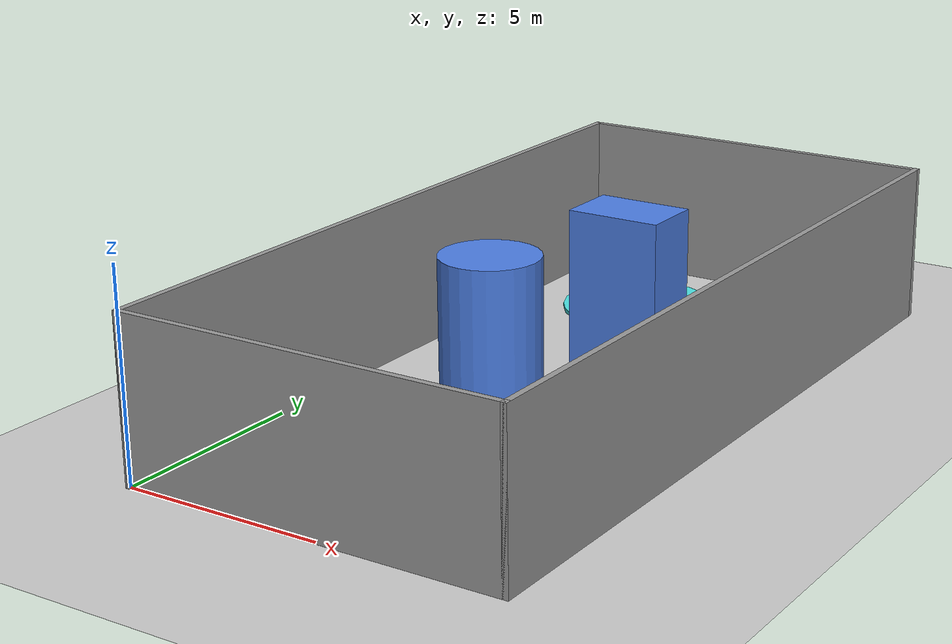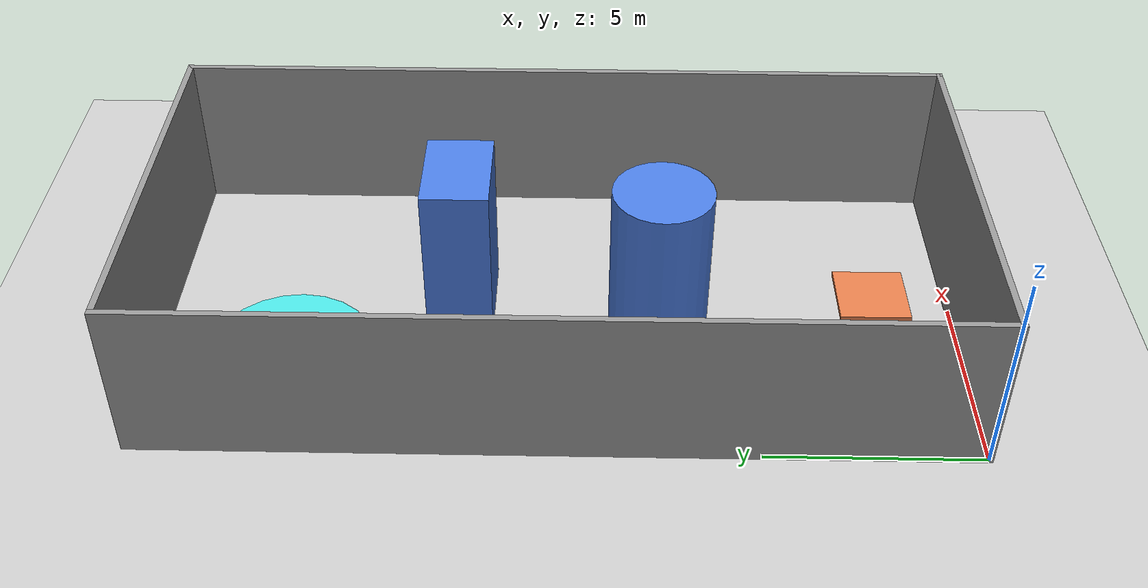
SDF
<sdf version="1.7">
 <world name="default">
  <light name="sun" type="directional">
   <pose>0 0 10 0 -0 0</pose>
   <diffuse>0.8 0.8 0.8 1</diffuse>
   <specular>0.2 0.2 0.2 1</specular>
   <attenuation>
    <range>1000</range>
    <constant>0.9</constant>
    <linear>0.01</linear>
    <quadratic>0.001</quadratic>
   </attenuation>
   <direction>-0.5 0.1 -0.9</direction>
   <spot><inner_angle>0</inner_angle><outer_angle>0</outer_angle><falloff>0</falloff></spot>
  </light>
  <model name="ground_plane">
   <static>1</static>
   <link name="link">
    <collision name="collision">
     <geometry><plane><normal>0 0 1</normal><size>100 100</size></plane></geometry>
     <surface>
      <contact><collide_bitmask>65535</collide_bitmask></contact>
      <friction><ode><mu>100</mu><mu2>50</mu2></ode></friction>
     </surface>
    </collision>
    <visual name="visual">
     <cast_shadows>0</cast_shadows>
     <geometry><plane><normal>0 0 1</normal><size>100 100</size></plane></geometry>
     <material>
      <script><uri>file://media/materials/scripts/gazebo.material</uri><name>Gazebo/Grey</name></script>
     </material>
    </visual>
   </link>
  </model>
  <gravity>0 0 -9.8</gravity>
  <magnetic_field>6e-06 2.3e-05 -4.2e-05</magnetic_field>
  <atmosphere type="adiabatic"/>
  <physics type="ode">
   <max_step_size>0.001</max_step_size>
   <real_time_factor>1</real_time_factor>
   <real_time_update_rate>1000</real_time_update_rate>
  </physics>
  <scene><ambient>0.4 0.4 0.4 1</ambient><background>0.7 0.7 0.7 1</background><shadows>1</shadows></scene>
  <spherical_coordinates>
   <surface_model>EARTH_WGS84</surface_model>
   <latitude_deg>0</latitude_deg>
   <longitude_deg>0</longitude_deg>
   <elevation>0</elevation>
   <heading_deg>0</heading_deg>
  </spherical_coordinates>
  <model name="smallArea">
   <pose>4.8 9.6 0 0 -0 0</pose>
   <link name="Wall_2">
    <collision name="Wall_2_Collision">
     <geometry><box><size>19.35 0.15 4</size></box></geometry>
     <pose>0 0 2 0 -0 0</pose>
    </collision>
    <visual name="Wall_2_Visual">
     <pose>0 0 2 0 -0 0</pose>
     <geometry><box><size>19.35 0.15 4</size></box></geometry>
     <material>
      <script><uri>file://media/materials/scripts/gazebo.material</uri><name>Gazebo/Grey</name></script>
      <ambient>1 1 1 1</ambient>
     </material>
     <meta><layer>0</layer></meta>
    </visual>
    <pose>-4.8 0 0 0 -0 1.5708</pose>
   </link>
   <link name="Wall_5">
    <collision name="Wall_5_Collision">
     <geometry><box><size>9.75 0.15 4</size></box></geometry>
     <pose>0 0 2 0 -0 0</pose>
    </collision>
    <visual name="Wall_5_Visual">
     <pose>0 0 2 0 -0 0</pose>
     <geometry><box><size>9.75 0.15 4</size></box></geometry>
     <material>
      <script><uri>file://media/materials/scripts/gazebo.material</uri><name>Gazebo/Grey</name></script>
      <ambient>1 1 1 1</ambient>
     </material>
     <meta><layer>0</layer></meta>
    </visual>
    <pose>0 -9.6 0 0 -0 0</pose>
   </link>
   <link name="Wall_7">
    <collision name="Wall_7_Collision">
     <geometry><box><size>19.35 0.15 4</size></box></geometry>
     <pose>0 0 2 0 -0 0</pose>
    </collision>
    <visual name="Wall_7_Visual">
     <pose>0 0 2 0 -0 0</pose>
     <geometry><box><size>19.35 0.15 4</size></box></geometry>
     <material>
      <script><uri>file://media/materials/scripts/gazebo.material</uri><name>Gazebo/Grey</name></script>
      <ambient>1 1 1 1</ambient>
     </material>
     <meta><layer>0</layer></meta>
    </visual>
    <pose>4.8 0 0 0 -0 1.5708</pose>
   </link>
   <link name="Wall_9">
    <collision name="Wall_9_Collision">
     <geometry><box><size>9.75 0.15 4</size></box></geometry>
     <pose>0 0 2 0 -0 0</pose>
    </collision>
    <visual name="Wall_9_Visual">
     <pose>0 0 2 0 -0 0</pose>
     <geometry><box><size>9.75 0.15 4</size></box></geometry>
     <material>
      <script><uri>file://media/materials/scripts/gazebo.material</uri><name>Gazebo/Grey</name></script>
      <ambient>1 1 1 1</ambient>
     </material>
     <meta><layer>0</layer></meta>
    </visual>
    <pose>0 9.6 0 0 -0 0</pose>
   </link>
   <static>1</static>
  </model>
  <model name="target">
   <link name="link_0">
    <inertial>
     <mass>1</mass>
     <inertia><ixx>0.145833</ixx><ixy>0</ixy><ixz>0</ixz><iyy>0.145833</iyy><iyz>0</iyz><izz>0.125</izz></inertia>
    </inertial>
    <visual name="visual">
     <geometry><cylinder><radius>2</radius><length>0.1</length></cylinder></geometry>
     <material>
      <lighting>1</lighting>
      <script><uri>file://media/materials/scripts/gazebo.material</uri><name>Gazebo/Grey</name></script>
      <shader type="pixel"><normal_map>__default__</normal_map></shader>
      <ambient>0.3 0.9 0.9 1</ambient>
      <diffuse>0.3 0.9 0.9 1</diffuse>
      <specular>0.01 0.01 0.01 1</specular>
      <emissive>0 0 0 1</emissive>
     </material>
    </visual>
    <collision name="collision">
     <geometry><cylinder><radius>2</radius><length>0.1</length></cylinder></geometry>
     <surface>
      <friction>
       <ode><mu>1</mu><mu2>1</mu2><fdir1>0 0 0</fdir1><slip1>0</slip1><slip2>0</slip2></ode>
       <torsional>
        <coefficient>1</coefficient>
        <patch_radius>0</patch_radius>
        <surface_radius>0</surface_radius>
        <use_patch_radius>1</use_patch_radius>
        <ode><slip>0</slip></ode>
       </torsional>
      </friction>
      <bounce><restitution_coefficient>0</restitution_coefficient><threshold>1e+06</threshold></bounce>
      <contact>
       <collide_without_contact>0</collide_without_contact>
       <collide_without_contact_bitmask>1</collide_without_contact_bitmask>
       <collide_bitmask>1</collide_bitmask>
       <ode>
        <soft_cfm>0</soft_cfm>
        <soft_erp>0.2</soft_erp>
        <kp>1e+13</kp>
        <kd>1</kd>
        <max_vel>0.01</max_vel>
        <min_depth>0</min_depth>
       </ode>
       <bullet>
        <split_impulse>1</split_impulse>
        <split_impulse_penetration_threshold>-0.01</split_impulse_penetration_threshold>
        <soft_cfm>0</soft_cfm>
        <soft_erp>0.2</soft_erp>
        <kp>1e+13</kp>
        <kd>1</kd>
       </bullet>
      </contact>
     </surface>
    </collision>
   </link>
   <static>1</static>
   <pose>3.2 16 0.05 0 -0 0</pose>
  </model>
  <model name="cuboid">
   <link name="link_8">
    <inertial>
     <mass>1</mass>
     <inertia>
      <ixx>0.166667</ixx>
      <ixy>0</ixy>
      <ixz>0</ixz>
      <iyy>0.166667</iyy>
      <iyz>0</iyz>
      <izz>0.166667</izz>
     </inertia>
    </inertial>
    <visual name="visual">
     <geometry><box><size>2.4 1.6 4</size></box></geometry>
     <material>
      <lighting>1</lighting>
      <script><uri>file://media/materials/scripts/gazebo.material</uri><name>Gazebo/Grey</name></script>
      <shader type="pixel"><normal_map>__default__</normal_map></shader>
      <ambient>0.3 0.5 0.9 1</ambient>
      <diffuse>0.3 0.5 0.9 1</diffuse>
      <specular>0.01 0.01 0.01 1</specular>
      <emissive>0 0 0 1</emissive>
     </material>
    </visual>
    <collision name="collision">
     <geometry><box><size>3.2 1.6 4</size></box></geometry>
     <surface>
      <friction>
       <ode><mu>1</mu><mu2>1</mu2><fdir1>0 0 0</fdir1><slip1>0</slip1><slip2>0</slip2></ode>
       <torsional>
        <coefficient>1</coefficient>
        <patch_radius>0</patch_radius>
        <surface_radius>0</surface_radius>
        <use_patch_radius>1</use_patch_radius>
        <ode><slip>0</slip></ode>
       </torsional>
      </friction>
      <bounce><restitution_coefficient>0</restitution_coefficient><threshold>1e+06</threshold></bounce>
      <contact>
       <collide_without_contact>0</collide_without_contact>
       <collide_without_contact_bitmask>1</collide_without_contact_bitmask>
       <collide_bitmask>1</collide_bitmask>
       <ode>
        <soft_cfm>0</soft_cfm>
        <soft_erp>0.2</soft_erp>
        <kp>1e+13</kp>
        <kd>1</kd>
        <max_vel>0.01</max_vel>
        <min_depth>0</min_depth>
       </ode>
       <bullet>
        <split_impulse>1</split_impulse>
        <split_impulse_penetration_threshold>-0.01</split_impulse_penetration_threshold>
        <soft_cfm>0</soft_cfm>
        <soft_erp>0.2</soft_erp>
        <kp>1e+13</kp>
        <kd>1</kd>
       </bullet>
      </contact>
     </surface>
    </collision>
   </link>
   <static>1</static>
   <pose>5.2 12 2.0 0 0 0</pose>
  </model>
  <model name="cylinder">
   <link name="link_0">
    <inertial>
     <mass>1</mass>
     <inertia><ixx>0.145833</ixx><ixy>0</ixy><ixz>0</ixz><iyy>0.145833</iyy><iyz>0</iyz><izz>0.125</izz></inertia>
    </inertial>
    <visual name="visual">
     <geometry><cylinder><radius>1.2</radius><length>4</length></cylinder></geometry>
     <material>
      <lighting>1</lighting>
      <script><uri>file://media/materials/scripts/gazebo.material</uri><name>Gazebo/Grey</name></script>
      <shader type="pixel"><normal_map>__default__</normal_map></shader>
      <ambient>0.3 0.5 0.9 1</ambient>
      <diffuse>0.3 0.5 0.9 1</diffuse>
      <specular>0.01 0.01 0.01 1</specular>
      <emissive>0 0 0 1</emissive>
     </material>
    </visual>
    <collision name="collision">
     <geometry><cylinder><radius>1.2</radius><length>4</length></cylinder></geometry>
     <surface>
      <friction>
       <ode><mu>1</mu><mu2>1</mu2><fdir1>0 0 0</fdir1><slip1>0</slip1><slip2>0</slip2></ode>
       <torsional>
        <coefficient>1</coefficient>
        <patch_radius>0</patch_radius>
        <surface_radius>0</surface_radius>
        <use_patch_radius>1</use_patch_radius>
        <ode><slip>0</slip></ode>
       </torsional>
      </friction>
      <bounce><restitution_coefficient>0</restitution_coefficient><threshold>1e+06</threshold></bounce>
      <contact>
       <collide_without_contact>0</collide_without_contact>
       <collide_without_contact_bitmask>1</collide_without_contact_bitmask>
       <collide_bitmask>1</collide_bitmask>
       <ode>
        <soft_cfm>0</soft_cfm>
        <soft_erp>0.2</soft_erp>
        <kp>1e+13</kp>
        <kd>1</kd>
        <max_vel>0.01</max_vel>
        <min_depth>0</min_depth>
       </ode>
       <bullet>
        <split_impulse>1</split_impulse>
        <split_impulse_penetration_threshold>-0.01</split_impulse_penetration_threshold>
        <soft_cfm>0</soft_cfm>
        <soft_erp>0.2</soft_erp>
        <kp>1e+13</kp>
        <kd>1</kd>
       </bullet>
      </contact>
     </surface>
    </collision>
   </link>
   <static>1</static>
   <pose>4.4 7.2 2.0 0 0 0</pose>
  </model>
  <model name="A_0">
   <link name="link_8">
    <inertial>
     <mass>1</mass>
     <inertia>
      <ixx>0.166667</ixx>
      <ixy>0</ixy>
      <ixz>0</ixz>
      <iyy>0.166667</iyy>
      <iyz>0</iyz>
      <izz>0.166667</izz>
     </inertia>
    </inertial>
    <visual name="visual">
     <geometry><box><size>1.6 1.6 0.1</size></box></geometry>
     <material>
      <lighting>1</lighting>
      <script><uri>file://media/materials/scripts/gazebo.material</uri><name>Gazebo/Grey</name></script>
      <shader type="pixel"><normal_map>__default__</normal_map></shader>
      <ambient>0.9 0.5 0.3 1</ambient>
      <diffuse>0.9 0.5 0.3 1</diffuse>
      <specular>0.01 0.01 0.01 1</specular>
      <emissive>0 0 0 1</emissive>
     </material>
    </visual>
    <collision name="collision">
     <geometry><box><size>1.6 1.6 0.1</size></box></geometry>
     <surface>
      <friction>
       <ode><mu>1</mu><mu2>1</mu2><fdir1>0 0 0</fdir1><slip1>0</slip1><slip2>0</slip2></ode>
       <torsional>
        <coefficient>1</coefficient>
        <patch_radius>0</patch_radius>
        <surface_radius>0</surface_radius>
        <use_patch_radius>1</use_patch_radius>
        <ode><slip>0</slip></ode>
       </torsional>
      </friction>
      <bounce><restitution_coefficient>0</restitution_coefficient><threshold>1e+06</threshold></bounce>
      <contact>
       <collide_without_contact>0</collide_without_contact>
       <collide_without_contact_bitmask>1</collide_without_contact_bitmask>
       <collide_bitmask>1</collide_bitmask>
       <ode>
        <soft_cfm>0</soft_cfm>
        <soft_erp>0.2</soft_erp>
        <kp>1e+13</kp>
        <kd>1</kd>
        <max_vel>0.01</max_vel>
        <min_depth>0</min_depth>
       </ode>
       <bullet>
        <split_impulse>1</split_impulse>
        <split_impulse_penetration_threshold>-0.01</split_impulse_penetration_threshold>
        <soft_cfm>0</soft_cfm>
        <soft_erp>0.2</soft_erp>
        <kp>1e+13</kp>
        <kd>1</kd>
       </bullet>
      </contact>
     </surface>
    </collision>
   </link>
   <static>1</static>
   <pose>3.2 2.4 2.0 0 0 0</pose>
  </model>
 </world>
</sdf>
